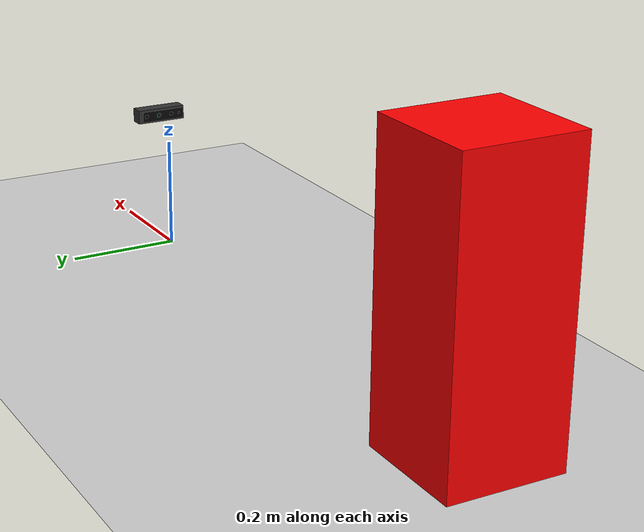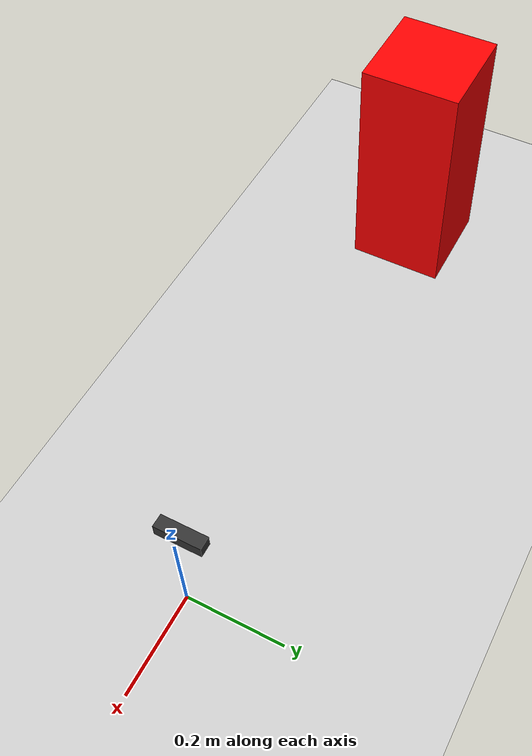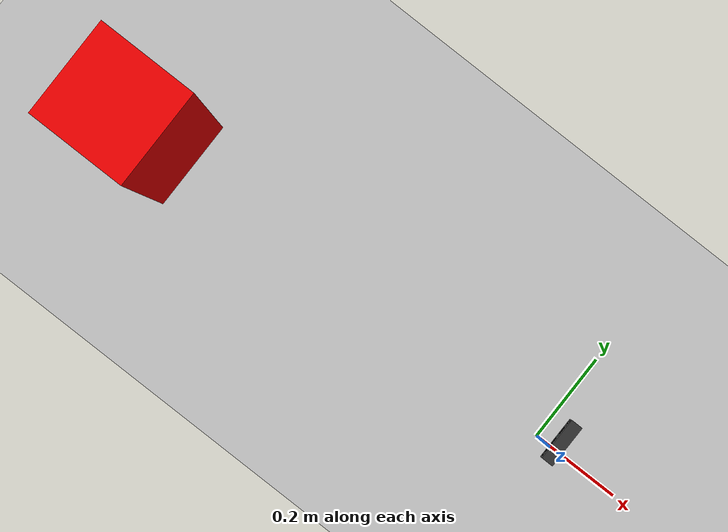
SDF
<sdf version="1.10">
 <world name="base">
  <plugin filename="gz-sim-physics-system" name="gz::sim::systems::Physics"/>
  <plugin filename="gz-sim-user-commands-system" name="gz::sim::systems::UserCommands"/>
  <plugin filename="gz-sim-scene-broadcaster-system" name="gz::sim::systems::SceneBroadcaster"/>
  <plugin filename="gz-sim-sensors-system" name="gz::sim::systems::Sensors">
   <render_engine>ogre2</render_engine>
  </plugin>
  <physics type="ode">
   <max_step_size>0.004</max_step_size>
   <real_time_factor>1.0</real_time_factor>
   <real_time_update_rate>250</real_time_update_rate>
  </physics>
  <gravity>0 0 -9.8</gravity>
  <magnetic_field>6e-06 2.3e-05 -4.2e-05</magnetic_field>
  <atmosphere type="adiabatic"/>
  <physics name="1ms" type="ignored">
   <max_step_size>0.001</max_step_size>
   <real_time_factor>1.0</real_time_factor>
  </physics>
  <scene>
   <grid>true</grid>
   <ambient>0.4 0.4 0.4 1</ambient>
   <background>0.7 0.7 0.7 1</background>
   <shadows>true</shadows>
  </scene>
  <model name="ground_plane">
   <static>true</static>
   <link name="link">
    <collision name="collision">
     <geometry><plane><normal>0 0 1</normal><size>1 1</size></plane></geometry>
    </collision>
    <visual name="visual">
     <geometry><plane><normal>0 0 1</normal><size>500 500</size></plane></geometry>
     <material>
      <ambient>0.8 0.8 0.8 1</ambient>
      <diffuse>0.8 0.8 0.8 1</diffuse>
      <specular>0.8 0.8 0.8 1</specular>
     </material>
    </visual>
    <inertial>
     <mass>1</mass>
     <inertia><ixx>1</ixx><ixy>0</ixy><ixz>0</ixz><iyy>1</iyy><iyz>0</iyz><izz>1</izz></inertia>
    </inertial>
   </link>
  </model>
  <model name="test_box">
   <static>true</static>
   <pose>-1 0 0.25 0 0 0</pose>
   <link name="link">
    <visual name="v">
     <geometry><box><size>0.2 0.2 0.5</size></box></geometry>
     <material><diffuse>1 0 0 1</diffuse></material>
    </visual>
   </link>
  </model>
  <include><uri>model://base_camera</uri><pose>0 0 0.26 0 0 3.14</pose></include>
  <light name="sunUTC" type="directional">
   <pose>0 0 500 0 -0 0</pose>
   <intensity>1</intensity>
   <direction>0.001 0.625 -0.78</direction>
   <diffuse>0.904 0.904 0.904 1</diffuse>
   <specular>0.271 0.271 0.271 1</specular>
   <attenuation><range>2000</range><linear>0</linear><constant>1</constant><quadratic>0</quadratic></attenuation>
   <spot><inner_angle>0</inner_angle><outer_angle>0</outer_angle><falloff>0</falloff></spot>
  </light>
  <spherical_coordinates>
   <surface_model>EARTH_WGS84</surface_model>
   <world_frame_orientation>ENU</world_frame_orientation>
   <latitude_deg>37.558862</latitude_deg>
   <longitude_deg>127.202099</longitude_deg>
   <elevation>0</elevation>
  </spherical_coordinates>
 </world>
</sdf>

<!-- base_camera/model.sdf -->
<sdf version="1.10">
    <model name="base_camera">
        <static>true</static>
        <link name="link">
            <pose>0 0 0 0 0 0</pose>

            <visual name="housing">
                <pose>0 -0.020 0 0 0 0</pose>
                <geometry>
                    <box>
                        <size>0.025 0.090 0.025</size>
                    </box>
                </geometry>
                <material>
                    <diffuse>0.2 0.2 0.2 1</diffuse>
                </material>
            </visual>

            <visual name="lens_panel">
                <pose>0.01255 -0.0175 0 0 0 0</pose>
                <geometry>
                    <box>
                        <size>0.0005 0.080 0.018</size>
                    </box>
                </geometry>
                <material>
                    <ambient>0.02 0.02 0.02 1</ambient>
                    <diffuse>0.03 0.03 0.03 1</diffuse>
                    <specular>0.4 0.4 0.4 1</specular>
                </material>
            </visual>

            <visual name="hole_right_ir">
                <pose>0.01285 -0.050 0 0 1.5708 0</pose>
                <geometry>
                    <cylinder>
                        <radius>0.0035</radius>
                        <length>0.0002</length>
                    </cylinder>
                </geometry>
                <material>
                    <ambient>0.0 0.0 0.0 1</ambient>
                    <diffuse>0.0 0.0 0.0 1</diffuse>
                    <specular>0.6 0.6 0.6 1</specular>
                </material>
            </visual>

            <visual name="hole_ir_projector">
                <pose>0.01285 -0.025 0 0 1.5708 0</pose>
                <geometry>
                    <cylinder>
                        <radius>0.0040</radius>
                        <length>0.0002</length>
                    </cylinder>
                </geometry>
                <material>
                    <ambient>0.0 0.05 0.04 1</ambient>
                    <diffuse>0.0 0.10 0.07 1</diffuse>
                    <specular>0.3 0.6 0.5 1</specular>
                </material>
            </visual>

            <visual name="hole_left_ir">
                <pose>0.01285 0 0 0 1.5708 0</pose>
                <geometry>
                    <cylinder>
                        <radius>0.0035</radius>
                        <length>0.0002</length>
                    </cylinder>
                </geometry>
                <material>
                    <ambient>0.0 0.0 0.0 1</ambient>
                    <diffuse>0.0 0.0 0.0 1</diffuse>
                    <specular>0.6 0.6 0.6 1</specular>
                </material>
            </visual>

            <visual name="hole_color">
                <pose>0.01285 0.015 0 0 1.5708 0</pose>
                <geometry>
                    <cylinder>
                        <radius>0.0022</radius>
                        <length>0.0002</length>
                    </cylinder>
                </geometry>
                <material>
                    <ambient>0.0 0.0 0.0 1</ambient>
                    <diffuse>0.0 0.0 0.0 1</diffuse>
                    <specular>0.7 0.7 0.7 1</specular>
                </material>
            </visual>

            <sensor name="depth_camera" type="depth_camera">
                <gz_frame_id>camera_depth_optical_frame</gz_frame_id>
                <pose>0 0 0 0 0 0</pose>
                <camera>
                    <horizontal_fov>1.5184</horizontal_fov>
                    <image>
                        <width>1280</width>
                        <height>720</height>
                    </image>
                    <clip>
                        <near>0.2</near>
                        <far>19.1</far>
                    </clip>
                </camera>
                <always_on>1</always_on>
                <update_rate>30</update_rate>
                <visualize>true</visualize>
                <topic>depth_camera</topic>
            </sensor>

            <sensor name="color_camera" type="camera">
                <gz_frame_id>camera_color_optical_frame</gz_frame_id>
                <pose>0 0.015 0 0 0 0</pose>
                <camera>
                    <horizontal_fov>1.20428</horizontal_fov>
                    <image>
                        <width>1280</width>
                        <height>720</height>
                    </image>
                    <clip>
                        <near>0.1</near>
                        <far>100</far>
                    </clip>
                </camera>
                <always_on>1</always_on>
                <update_rate>30</update_rate>
                <visualize>true</visualize>
                <topic>color_camera</topic>
            </sensor>
        </link>
    </model>
</sdf>
